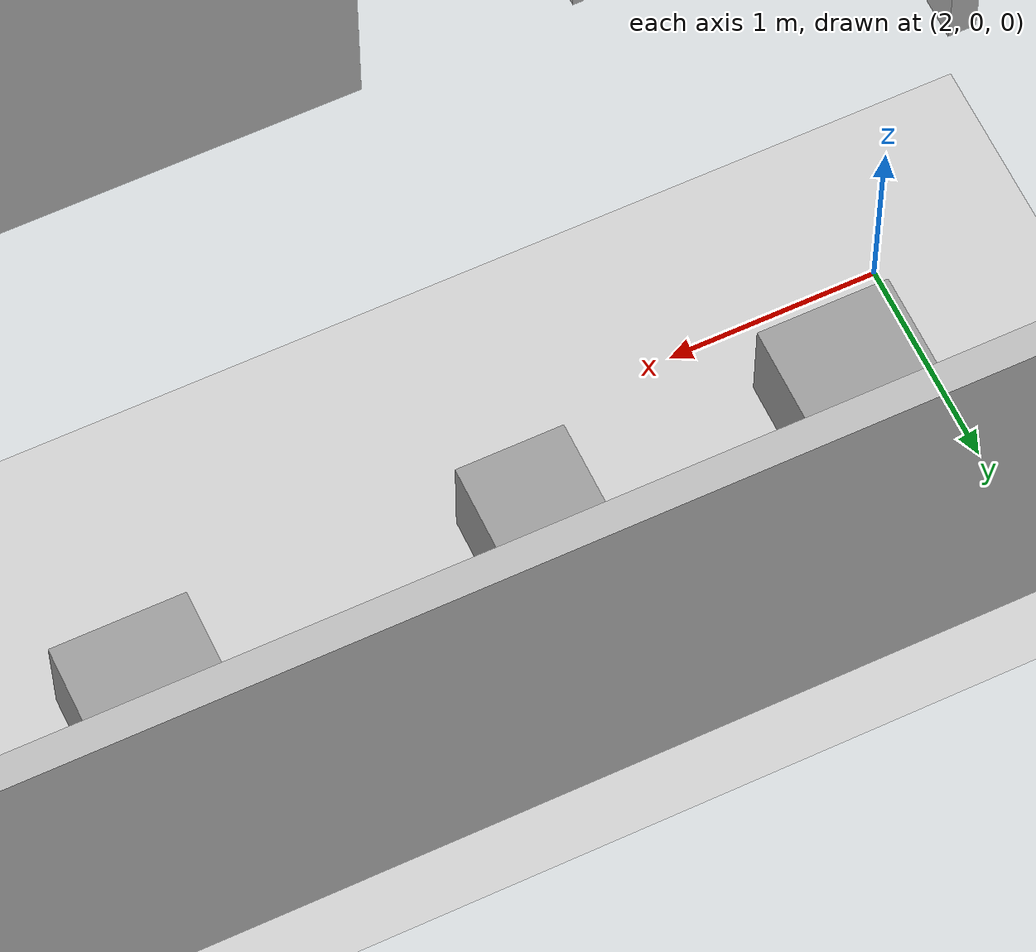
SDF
<sdf version="1.6">
 <world name="default">
  <light name="sun" type="directional">
   <pose>0 0 10 0 -0 0</pose>
   <diffuse>0.8 0.8 0.8 1</diffuse>
   <specular>0.1 0.1 0.1 1</specular>
   <attenuation>
    <range>1000</range>
    <constant>0.9</constant>
    <linear>0.01</linear>
    <quadratic>0.001</quadratic>
   </attenuation>
   <direction>-0.5 0.5 -1</direction>
  </light>
  <model name="ground_plane">
   <static>1</static>
   <link name="link">
    <collision name="collision">
     <geometry><plane><normal>0 0 1</normal><size>100 100</size></plane></geometry>
     <surface><friction><ode><mu>100</mu><mu2>50</mu2></ode></friction></surface>
    </collision>
    <visual name="visual">
     <cast_shadows>0</cast_shadows>
     <geometry><plane><normal>0 0 1</normal><size>100 100</size></plane></geometry>
     <material>
      <script><uri>file://media/materials/scripts/gazebo.material</uri><name>Gazebo/Grey</name></script>
     </material>
    </visual>
   </link>
  </model>
  <gravity>0 0 -9.8</gravity>
  <magnetic_field>6e-06 2.3e-05 -4.2e-05</magnetic_field>
  <atmosphere type="adiabatic"/>
  <physics name="default_physics" default="0" type="ode">
   <max_step_size>0.001</max_step_size>
   <real_time_factor>1</real_time_factor>
   <real_time_update_rate>1000</real_time_update_rate>
  </physics>
  <scene><ambient>0.6 0.6 0.6 1</ambient><background>0.8 0.79 0.77 1</background><shadows>1</shadows></scene>
  <spherical_coordinates>
   <surface_model>EARTH_WGS84</surface_model>
   <latitude_deg>0</latitude_deg>
   <longitude_deg>0</longitude_deg>
   <elevation>0</elevation>
   <heading_deg>0</heading_deg>
  </spherical_coordinates>
  <model name="my_building">
   <static>1</static>
   <link name="building">
    <visual name="visual">
     <geometry><mesh><uri>model://building/building.dae</uri><scale>1 1 1</scale></mesh></geometry>
    </visual>
   </link>
  </model>
  <model name="unit_box_0">
   <pose>5.76379 0.793285 0.241051 0 -0 0</pose>
   <link name="link">
    <inertial>
     <mass>1</mass>
     <inertia>
      <ixx>0.166667</ixx>
      <ixy>0</ixy>
      <ixz>0</ixz>
      <iyy>0.166667</iyy>
      <iyz>0</iyz>
      <izz>0.166667</izz>
     </inertia>
    </inertial>
    <collision name="collision"><geometry><box><size>0.630949 0.819324 0.4821</size></box></geometry></collision>
    <visual name="visual">
     <geometry><box><size>0.630949 0.819324 0.4821</size></box></geometry>
     <material>
      <script><name>Gazebo/Grey</name><uri>file://media/materials/scripts/gazebo.material</uri></script>
     </material>
    </visual>
   </link>
  </model>
  <model name="unit_box_0_clone">
   <pose>3.93231 0.74717 0.24105 0 -0 0</pose>
   <link name="link">
    <inertial>
     <mass>1</mass>
     <inertia>
      <ixx>0.166667</ixx>
      <ixy>0</ixy>
      <ixz>0</ixz>
      <iyy>0.166667</iyy>
      <iyz>0</iyz>
      <izz>0.166667</izz>
     </inertia>
    </inertial>
    <collision name="collision">
     <geometry><box><size>0.510239 0.819324 0.482101</size></box></geometry>
    </collision>
    <visual name="visual">
     <geometry><box><size>0.510239 0.819324 0.482101</size></box></geometry>
     <material>
      <script><name>Gazebo/Grey</name><uri>file://media/materials/scripts/gazebo.material</uri></script>
     </material>
    </visual>
   </link>
  </model>
  <model name="unit_box_0_clone_clone">
   <pose>2.42059 0.696996 0.24105 0 -0 0</pose>
   <link name="link">
    <inertial>
     <mass>1</mass>
     <inertia>
      <ixx>0.166667</ixx>
      <ixy>0</ixy>
      <ixz>0</ixz>
      <iyy>0.166667</iyy>
      <iyz>0</iyz>
      <izz>0.166667</izz>
     </inertia>
    </inertial>
    <collision name="collision">
     <geometry><box><size>0.630949 0.819324 0.482101</size></box></geometry>
    </collision>
    <visual name="visual">
     <geometry><box><size>0.630949 0.819324 0.482101</size></box></geometry>
     <material>
      <script><name>Gazebo/Grey</name><uri>file://media/materials/scripts/gazebo.material</uri></script>
     </material>
    </visual>
   </link>
  </model>
 </world>
</sdf>
